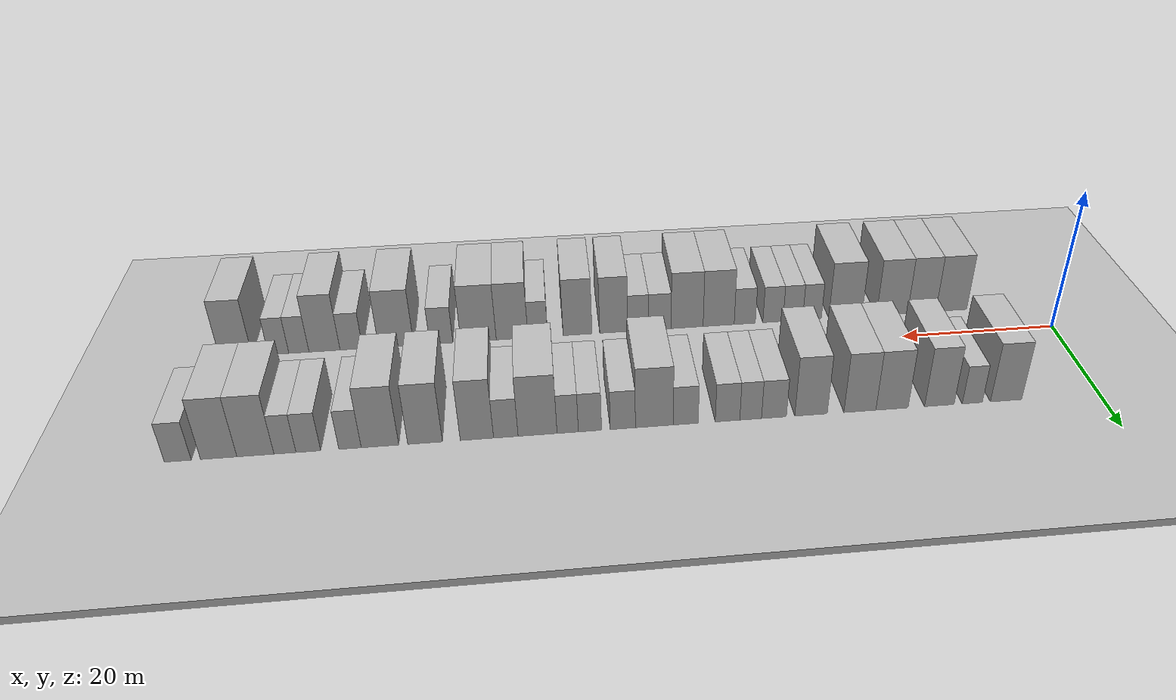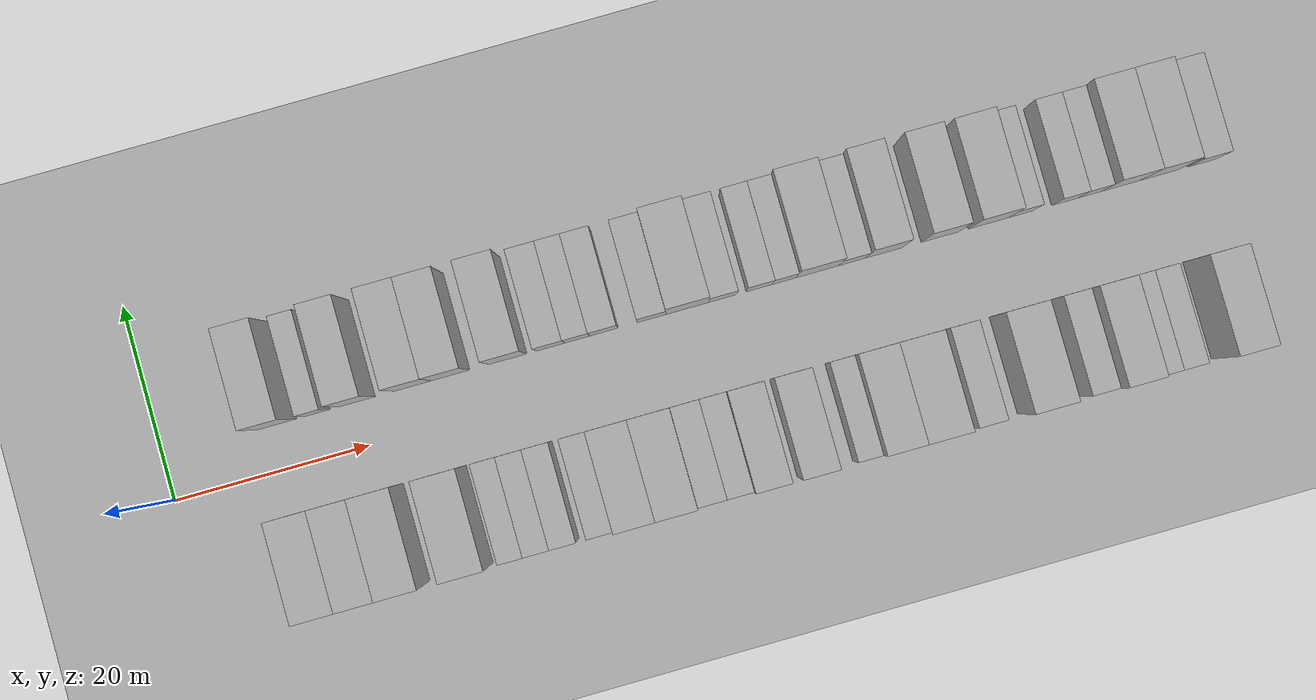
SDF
<sdf version="1.6">
 <world name="default">
  <include><name>ground_plane_1</name><uri>model://HANNAS_ground_plane</uri></include>
  <include>
   <name>ground_plane_2</name>
   <uri>model://HANNAS_ground_plane</uri>
   <pose>100 0 0  0 0 0</pose>
  </include>
  <model name="building_1">
   <static>1</static>
   <pose>11.9323 9.5000 0 0.000000 0.000000 1.570796</pose>
   <link name="link">
    <pose>0 0 4.50 0 0 0</pose>
    <collision name="collision"><geometry><box><size>10.0000 3.8645 9.0000</size></box></geometry></collision>
    <visual name="visual">
     <cast_shadows>0</cast_shadows>
     <geometry><box><size>10.0000 3.8645 9.0000</size></box></geometry>
     <material>
      <script>
       <uri>model://HANNAS_wall/materials/scripts</uri>
       <uri>model://HANNAS_wall/materials/textures</uri>
       <name>vrc/HANNAS_wall</name>
      </script>
     </material>
    </visual>
   </link>
  </model>
  <model name="building_2">
   <static>1</static>
   <pose>16.0944 9.5000 0 0.000000 0.000000 1.570796</pose>
   <link name="link">
    <pose>0 0 3.00 0 0 0</pose>
    <collision name="collision"><geometry><box><size>10.0000 2.4597 6.0000</size></box></geometry></collision>
    <visual name="visual">
     <cast_shadows>0</cast_shadows>
     <geometry><box><size>10.0000 2.4597 6.0000</size></box></geometry>
     <material>
      <script>
       <uri>model://HANNAS_wall/materials/scripts</uri>
       <uri>model://HANNAS_wall/materials/textures</uri>
       <name>vrc/HANNAS_wall</name>
      </script>
     </material>
    </visual>
   </link>
  </model>
  <model name="building_3">
   <static>1</static>
   <pose>20.1292 9.5000 0 0.000000 0.000000 1.570796</pose>
   <link name="link">
    <pose>0 0 4.50 0 0 0</pose>
    <collision name="collision"><geometry><box><size>10.0000 3.6099 9.0000</size></box></geometry></collision>
    <visual name="visual">
     <cast_shadows>0</cast_shadows>
     <geometry><box><size>10.0000 3.6099 9.0000</size></box></geometry>
     <material>
      <script>
       <uri>model://HANNAS_wall/materials/scripts</uri>
       <uri>model://HANNAS_wall/materials/textures</uri>
       <name>vrc/HANNAS_wall</name>
      </script>
     </material>
    </visual>
   </link>
  </model>
  <model name="building_4">
   <static>1</static>
   <pose>25.8857 9.5000 0 0.000000 0.000000 1.570796</pose>
   <link name="link">
    <pose>0 0 4.50 0 0 0</pose>
    <collision name="collision"><geometry><box><size>10.0000 3.9031 9.0000</size></box></geometry></collision>
    <visual name="visual">
     <cast_shadows>0</cast_shadows>
     <geometry><box><size>10.0000 3.9031 9.0000</size></box></geometry>
     <material>
      <script>
       <uri>model://HANNAS_wall/materials/scripts</uri>
       <uri>model://HANNAS_wall/materials/textures</uri>
       <name>vrc/HANNAS_wall</name>
      </script>
     </material>
    </visual>
   </link>
  </model>
  <model name="building_5">
   <static>1</static>
   <pose>29.7644 9.5000 0 0.000000 0.000000 1.570796</pose>
   <link name="link">
    <pose>0 0 4.50 0 0 0</pose>
    <collision name="collision"><geometry><box><size>10.0000 3.8545 9.0000</size></box></geometry></collision>
    <visual name="visual">
     <cast_shadows>0</cast_shadows>
     <geometry><box><size>10.0000 3.8545 9.0000</size></box></geometry>
     <material>
      <script>
       <uri>model://HANNAS_wall/materials/scripts</uri>
       <uri>model://HANNAS_wall/materials/textures</uri>
       <name>vrc/HANNAS_wall</name>
      </script>
     </material>
    </visual>
   </link>
  </model>
  <model name="building_6">
   <static>1</static>
   <pose>35.6287 9.5000 0 0.000000 0.000000 1.570796</pose>
   <link name="link">
    <pose>0 0 4.50 0 0 0</pose>
    <collision name="collision"><geometry><box><size>10.0000 3.8741 9.0000</size></box></geometry></collision>
    <visual name="visual">
     <cast_shadows>0</cast_shadows>
     <geometry><box><size>10.0000 3.8741 9.0000</size></box></geometry>
     <material>
      <script>
       <uri>model://HANNAS_wall/materials/scripts</uri>
       <uri>model://HANNAS_wall/materials/textures</uri>
       <name>vrc/HANNAS_wall</name>
      </script>
     </material>
    </visual>
   </link>
  </model>
  <model name="building_7">
   <static>1</static>
   <pose>40.0442 9.5000 0 0.000000 0.000000 1.570796</pose>
   <link name="link">
    <pose>0 0 3.00 0 0 0</pose>
    <collision name="collision"><geometry><box><size>10.0000 2.9568 6.0000</size></box></geometry></collision>
    <visual name="visual">
     <cast_shadows>0</cast_shadows>
     <geometry><box><size>10.0000 2.9568 6.0000</size></box></geometry>
     <material>
      <script>
       <uri>model://HANNAS_wall/materials/scripts</uri>
       <uri>model://HANNAS_wall/materials/textures</uri>
       <name>vrc/HANNAS_wall</name>
      </script>
     </material>
    </visual>
   </link>
  </model>
  <model name="building_8">
   <static>1</static>
   <pose>42.8083 9.5000 0 0.000000 0.000000 1.570796</pose>
   <link name="link">
    <pose>0 0 3.00 0 0 0</pose>
    <collision name="collision"><geometry><box><size>10.0000 2.5714 6.0000</size></box></geometry></collision>
    <visual name="visual">
     <cast_shadows>0</cast_shadows>
     <geometry><box><size>10.0000 2.5714 6.0000</size></box></geometry>
     <material>
      <script>
       <uri>model://HANNAS_wall/materials/scripts</uri>
       <uri>model://HANNAS_wall/materials/textures</uri>
       <name>vrc/HANNAS_wall</name>
      </script>
     </material>
    </visual>
   </link>
  </model>
  <model name="building_9">
   <static>1</static>
   <pose>45.5381 9.5000 0 0.000000 0.000000 1.570796</pose>
   <link name="link">
    <pose>0 0 3.00 0 0 0</pose>
    <collision name="collision"><geometry><box><size>10.0000 2.8882 6.0000</size></box></geometry></collision>
    <visual name="visual">
     <cast_shadows>0</cast_shadows>
     <geometry><box><size>10.0000 2.8882 6.0000</size></box></geometry>
     <material>
      <script>
       <uri>model://HANNAS_wall/materials/scripts</uri>
       <uri>model://HANNAS_wall/materials/textures</uri>
       <name>vrc/HANNAS_wall</name>
      </script>
     </material>
    </visual>
   </link>
  </model>
  <model name="building_10">
   <static>1</static>
   <pose>50.4463 9.5000 0 0.000000 0.000000 1.570796</pose>
   <link name="link">
    <pose>0 0 3.00 0 0 0</pose>
    <collision name="collision"><geometry><box><size>10.0000 2.9283 6.0000</size></box></geometry></collision>
    <visual name="visual">
     <cast_shadows>0</cast_shadows>
     <geometry><box><size>10.0000 2.9283 6.0000</size></box></geometry>
     <material>
      <script>
       <uri>model://HANNAS_wall/materials/scripts</uri>
       <uri>model://HANNAS_wall/materials/textures</uri>
       <name>vrc/HANNAS_wall</name>
      </script>
     </material>
    </visual>
   </link>
  </model>
  <model name="building_11">
   <static>1</static>
   <pose>54.1067 9.5000 0 0.000000 0.000000 1.570796</pose>
   <link name="link">
    <pose>0 0 4.50 0 0 0</pose>
    <collision name="collision"><geometry><box><size>10.0000 4.3924 9.0000</size></box></geometry></collision>
    <visual name="visual">
     <cast_shadows>0</cast_shadows>
     <geometry><box><size>10.0000 4.3924 9.0000</size></box></geometry>
     <material>
      <script>
       <uri>model://HANNAS_wall/materials/scripts</uri>
       <uri>model://HANNAS_wall/materials/textures</uri>
       <name>vrc/HANNAS_wall</name>
      </script>
     </material>
    </visual>
   </link>
  </model>
  <model name="building_12">
   <static>1</static>
   <pose>57.7570 9.5000 0 0.000000 0.000000 1.570796</pose>
   <link name="link">
    <pose>0 0 3.00 0 0 0</pose>
    <collision name="collision"><geometry><box><size>10.0000 2.9081 6.0000</size></box></geometry></collision>
    <visual name="visual">
     <cast_shadows>0</cast_shadows>
     <geometry><box><size>10.0000 2.9081 6.0000</size></box></geometry>
     <material>
      <script>
       <uri>model://HANNAS_wall/materials/scripts</uri>
       <uri>model://HANNAS_wall/materials/textures</uri>
       <name>vrc/HANNAS_wall</name>
      </script>
     </material>
    </visual>
   </link>
  </model>
  <model name="building_13">
   <static>1</static>
   <pose>61.5493 9.5000 0 0.000000 0.000000 1.570796</pose>
   <link name="link">
    <pose>0 0 3.00 0 0 0</pose>
    <collision name="collision"><geometry><box><size>10.0000 2.6766 6.0000</size></box></geometry></collision>
    <visual name="visual">
     <cast_shadows>0</cast_shadows>
     <geometry><box><size>10.0000 2.6766 6.0000</size></box></geometry>
     <material>
      <script>
       <uri>model://HANNAS_wall/materials/scripts</uri>
       <uri>model://HANNAS_wall/materials/textures</uri>
       <name>vrc/HANNAS_wall</name>
      </script>
     </material>
    </visual>
   </link>
  </model>
  <model name="building_14">
   <static>1</static>
   <pose>64.1087 9.5000 0 0.000000 0.000000 1.570796</pose>
   <link name="link">
    <pose>0 0 3.00 0 0 0</pose>
    <collision name="collision"><geometry><box><size>10.0000 2.4421 6.0000</size></box></geometry></collision>
    <visual name="visual">
     <cast_shadows>0</cast_shadows>
     <geometry><box><size>10.0000 2.4421 6.0000</size></box></geometry>
     <material>
      <script>
       <uri>model://HANNAS_wall/materials/scripts</uri>
       <uri>model://HANNAS_wall/materials/textures</uri>
       <name>vrc/HANNAS_wall</name>
      </script>
     </material>
    </visual>
   </link>
  </model>
  <model name="building_15">
   <static>1</static>
   <pose>67.5504 9.5000 0 0.000000 0.000000 1.570796</pose>
   <link name="link">
    <pose>0 0 4.50 0 0 0</pose>
    <collision name="collision"><geometry><box><size>10.0000 4.4414 9.0000</size></box></geometry></collision>
    <visual name="visual">
     <cast_shadows>0</cast_shadows>
     <geometry><box><size>10.0000 4.4414 9.0000</size></box></geometry>
     <material>
      <script>
       <uri>model://HANNAS_wall/materials/scripts</uri>
       <uri>model://HANNAS_wall/materials/textures</uri>
       <name>vrc/HANNAS_wall</name>
      </script>
     </material>
    </visual>
   </link>
  </model>
  <model name="building_16">
   <static>1</static>
   <pose>71.1654 9.5000 0 0.000000 0.000000 1.570796</pose>
   <link name="link">
    <pose>0 0 3.00 0 0 0</pose>
    <collision name="collision"><geometry><box><size>10.0000 2.7886 6.0000</size></box></geometry></collision>
    <visual name="visual">
     <cast_shadows>0</cast_shadows>
     <geometry><box><size>10.0000 2.7886 6.0000</size></box></geometry>
     <material>
      <script>
       <uri>model://HANNAS_wall/materials/scripts</uri>
       <uri>model://HANNAS_wall/materials/textures</uri>
       <name>vrc/HANNAS_wall</name>
      </script>
     </material>
    </visual>
   </link>
  </model>
  <model name="building_17">
   <static>1</static>
   <pose>74.4422 9.5000 0 0.000000 0.000000 1.570796</pose>
   <link name="link">
    <pose>0 0 4.50 0 0 0</pose>
    <collision name="collision"><geometry><box><size>10.0000 3.7651 9.0000</size></box></geometry></collision>
    <visual name="visual">
     <cast_shadows>0</cast_shadows>
     <geometry><box><size>10.0000 3.7651 9.0000</size></box></geometry>
     <material>
      <script>
       <uri>model://HANNAS_wall/materials/scripts</uri>
       <uri>model://HANNAS_wall/materials/textures</uri>
       <name>vrc/HANNAS_wall</name>
      </script>
     </material>
    </visual>
   </link>
  </model>
  <model name="building_18">
   <static>1</static>
   <pose>80.2710 9.5000 0 0.000000 0.000000 1.570796</pose>
   <link name="link">
    <pose>0 0 4.50 0 0 0</pose>
    <collision name="collision"><geometry><box><size>10.0000 3.8924 9.0000</size></box></geometry></collision>
    <visual name="visual">
     <cast_shadows>0</cast_shadows>
     <geometry><box><size>10.0000 3.8924 9.0000</size></box></geometry>
     <material>
      <script>
       <uri>model://HANNAS_wall/materials/scripts</uri>
       <uri>model://HANNAS_wall/materials/textures</uri>
       <name>vrc/HANNAS_wall</name>
      </script>
     </material>
    </visual>
   </link>
  </model>
  <model name="building_19">
   <static>1</static>
   <pose>85.3004 9.5000 0 0.000000 0.000000 1.570796</pose>
   <link name="link">
    <pose>0 0 4.50 0 0 0</pose>
    <collision name="collision"><geometry><box><size>10.0000 4.1664 9.0000</size></box></geometry></collision>
    <visual name="visual">
     <cast_shadows>0</cast_shadows>
     <geometry><box><size>10.0000 4.1664 9.0000</size></box></geometry>
     <material>
      <script>
       <uri>model://HANNAS_wall/materials/scripts</uri>
       <uri>model://HANNAS_wall/materials/textures</uri>
       <name>vrc/HANNAS_wall</name>
      </script>
     </material>
    </visual>
   </link>
  </model>
  <model name="building_20">
   <static>1</static>
   <pose>88.6267 9.5000 0 0.000000 0.000000 1.570796</pose>
   <link name="link">
    <pose>0 0 3.00 0 0 0</pose>
    <collision name="collision"><geometry><box><size>10.0000 2.4862 6.0000</size></box></geometry></collision>
    <visual name="visual">
     <cast_shadows>0</cast_shadows>
     <geometry><box><size>10.0000 2.4862 6.0000</size></box></geometry>
     <material>
      <script>
       <uri>model://HANNAS_wall/materials/scripts</uri>
       <uri>model://HANNAS_wall/materials/textures</uri>
       <name>vrc/HANNAS_wall</name>
      </script>
     </material>
    </visual>
   </link>
  </model>
  <model name="building_21">
   <static>1</static>
   <pose>93.2299 9.5000 0 0.000000 0.000000 1.570796</pose>
   <link name="link">
    <pose>0 0 3.00 0 0 0</pose>
    <collision name="collision"><geometry><box><size>10.0000 2.7202 6.0000</size></box></geometry></collision>
    <visual name="visual">
     <cast_shadows>0</cast_shadows>
     <geometry><box><size>10.0000 2.7202 6.0000</size></box></geometry>
     <material>
      <script>
       <uri>model://HANNAS_wall/materials/scripts</uri>
       <uri>model://HANNAS_wall/materials/textures</uri>
       <name>vrc/HANNAS_wall</name>
      </script>
     </material>
    </visual>
   </link>
  </model>
  <model name="building_22">
   <static>1</static>
   <pose>95.7969 9.5000 0 0.000000 0.000000 1.570796</pose>
   <link name="link">
    <pose>0 0 3.00 0 0 0</pose>
    <collision name="collision"><geometry><box><size>10.0000 2.4138 6.0000</size></box></geometry></collision>
    <visual name="visual">
     <cast_shadows>0</cast_shadows>
     <geometry><box><size>10.0000 2.4138 6.0000</size></box></geometry>
     <material>
      <script>
       <uri>model://HANNAS_wall/materials/scripts</uri>
       <uri>model://HANNAS_wall/materials/textures</uri>
       <name>vrc/HANNAS_wall</name>
      </script>
     </material>
    </visual>
   </link>
  </model>
  <model name="building_23">
   <static>1</static>
   <pose>99.0238 9.5000 0 0.000000 0.000000 1.570796</pose>
   <link name="link">
    <pose>0 0 4.50 0 0 0</pose>
    <collision name="collision"><geometry><box><size>10.0000 4.0401 9.0000</size></box></geometry></collision>
    <visual name="visual">
     <cast_shadows>0</cast_shadows>
     <geometry><box><size>10.0000 4.0401 9.0000</size></box></geometry>
     <material>
      <script>
       <uri>model://HANNAS_wall/materials/scripts</uri>
       <uri>model://HANNAS_wall/materials/textures</uri>
       <name>vrc/HANNAS_wall</name>
      </script>
     </material>
    </visual>
   </link>
  </model>
  <model name="building_24">
   <static>1</static>
   <pose>103.0161 9.5000 0 0.000000 0.000000 1.570796</pose>
   <link name="link">
    <pose>0 0 4.50 0 0 0</pose>
    <collision name="collision"><geometry><box><size>10.0000 3.9446 9.0000</size></box></geometry></collision>
    <visual name="visual">
     <cast_shadows>0</cast_shadows>
     <geometry><box><size>10.0000 3.9446 9.0000</size></box></geometry>
     <material>
      <script>
       <uri>model://HANNAS_wall/materials/scripts</uri>
       <uri>model://HANNAS_wall/materials/textures</uri>
       <name>vrc/HANNAS_wall</name>
      </script>
     </material>
    </visual>
   </link>
  </model>
  <model name="building_25">
   <static>1</static>
   <pose>107.4383 9.5000 0 0.000000 0.000000 1.570796</pose>
   <link name="link">
    <pose>0 0 3.00 0 0 0</pose>
    <collision name="collision"><geometry><box><size>10.0000 2.8997 6.0000</size></box></geometry></collision>
    <visual name="visual">
     <cast_shadows>0</cast_shadows>
     <geometry><box><size>10.0000 2.8997 6.0000</size></box></geometry>
     <material>
      <script>
       <uri>model://HANNAS_wall/materials/scripts</uri>
       <uri>model://HANNAS_wall/materials/textures</uri>
       <name>vrc/HANNAS_wall</name>
      </script>
     </material>
    </visual>
   </link>
  </model>
  <model name="building_49">
   <static>1</static>
   <pose>12.1169 -9.5000 0 0.000000 0.000000 1.570796</pose>
   <link name="link">
    <pose>0 0 4.50 0 0 0</pose>
    <collision name="collision"><geometry><box><size>10.0000 4.2338 9.0000</size></box></geometry></collision>
    <visual name="visual">
     <cast_shadows>0</cast_shadows>
     <geometry><box><size>10.0000 4.2338 9.0000</size></box></geometry>
     <material>
      <script>
       <uri>model://HANNAS_wall/materials/scripts</uri>
       <uri>model://HANNAS_wall/materials/textures</uri>
       <name>vrc/HANNAS_wall</name>
      </script>
     </material>
    </visual>
   </link>
  </model>
  <model name="building_50">
   <static>1</static>
   <pose>16.1686 -9.5000 0 0.000000 0.000000 1.570796</pose>
   <link name="link">
    <pose>0 0 4.50 0 0 0</pose>
    <collision name="collision"><geometry><box><size>10.0000 3.8697 9.0000</size></box></geometry></collision>
    <visual name="visual">
     <cast_shadows>0</cast_shadows>
     <geometry><box><size>10.0000 3.8697 9.0000</size></box></geometry>
     <material>
      <script>
       <uri>model://HANNAS_wall/materials/scripts</uri>
       <uri>model://HANNAS_wall/materials/textures</uri>
       <name>vrc/HANNAS_wall</name>
      </script>
     </material>
    </visual>
   </link>
  </model>
  <model name="building_51">
   <static>1</static>
   <pose>20.2210 -9.5000 0 0.000000 0.000000 1.570796</pose>
   <link name="link">
    <pose>0 0 4.50 0 0 0</pose>
    <collision name="collision"><geometry><box><size>10.0000 4.2349 9.0000</size></box></geometry></collision>
    <visual name="visual">
     <cast_shadows>0</cast_shadows>
     <geometry><box><size>10.0000 4.2349 9.0000</size></box></geometry>
     <material>
      <script>
       <uri>model://HANNAS_wall/materials/scripts</uri>
       <uri>model://HANNAS_wall/materials/textures</uri>
       <name>vrc/HANNAS_wall</name>
      </script>
     </material>
    </visual>
   </link>
  </model>
  <model name="building_52">
   <static>1</static>
   <pose>26.5717 -9.5000 0 0.000000 0.000000 1.570796</pose>
   <link name="link">
    <pose>0 0 4.50 0 0 0</pose>
    <collision name="collision"><geometry><box><size>10.0000 4.4666 9.0000</size></box></geometry></collision>
    <visual name="visual">
     <cast_shadows>0</cast_shadows>
     <geometry><box><size>10.0000 4.4666 9.0000</size></box></geometry>
     <material>
      <script>
       <uri>model://HANNAS_wall/materials/scripts</uri>
       <uri>model://HANNAS_wall/materials/textures</uri>
       <name>vrc/HANNAS_wall</name>
      </script>
     </material>
    </visual>
   </link>
  </model>
  <model name="building_53">
   <static>1</static>
   <pose>31.0629 -9.5000 0 0.000000 0.000000 1.570796</pose>
   <link name="link">
    <pose>0 0 3.00 0 0 0</pose>
    <collision name="collision"><geometry><box><size>10.0000 2.5158 6.0000</size></box></geometry></collision>
    <visual name="visual">
     <cast_shadows>0</cast_shadows>
     <geometry><box><size>10.0000 2.5158 6.0000</size></box></geometry>
     <material>
      <script>
       <uri>model://HANNAS_wall/materials/scripts</uri>
       <uri>model://HANNAS_wall/materials/textures</uri>
       <name>vrc/HANNAS_wall</name>
      </script>
     </material>
    </visual>
   </link>
  </model>
  <model name="building_54">
   <static>1</static>
   <pose>33.6341 -9.5000 0 0.000000 0.000000 1.570796</pose>
   <link name="link">
    <pose>0 0 3.00 0 0 0</pose>
    <collision name="collision"><geometry><box><size>10.0000 2.6265 6.0000</size></box></geometry></collision>
    <visual name="visual">
     <cast_shadows>0</cast_shadows>
     <geometry><box><size>10.0000 2.6265 6.0000</size></box></geometry>
     <material>
      <script>
       <uri>model://HANNAS_wall/materials/scripts</uri>
       <uri>model://HANNAS_wall/materials/textures</uri>
       <name>vrc/HANNAS_wall</name>
      </script>
     </material>
    </visual>
   </link>
  </model>
  <model name="building_55">
   <static>1</static>
   <pose>36.2865 -9.5000 0 0.000000 0.000000 1.570796</pose>
   <link name="link">
    <pose>0 0 3.00 0 0 0</pose>
    <collision name="collision"><geometry><box><size>10.0000 2.6783 6.0000</size></box></geometry></collision>
    <visual name="visual">
     <cast_shadows>0</cast_shadows>
     <geometry><box><size>10.0000 2.6783 6.0000</size></box></geometry>
     <material>
      <script>
       <uri>model://HANNAS_wall/materials/scripts</uri>
       <uri>model://HANNAS_wall/materials/textures</uri>
       <name>vrc/HANNAS_wall</name>
      </script>
     </material>
    </visual>
   </link>
  </model>
  <model name="building_56">
   <static>1</static>
   <pose>40.0301 -9.5000 0 0.000000 0.000000 1.570796</pose>
   <link name="link">
    <pose>0 0 3.00 0 0 0</pose>
    <collision name="collision"><geometry><box><size>10.0000 2.8089 6.0000</size></box></geometry></collision>
    <visual name="visual">
     <cast_shadows>0</cast_shadows>
     <geometry><box><size>10.0000 2.8089 6.0000</size></box></geometry>
     <material>
      <script>
       <uri>model://HANNAS_wall/materials/scripts</uri>
       <uri>model://HANNAS_wall/materials/textures</uri>
       <name>vrc/HANNAS_wall</name>
      </script>
     </material>
    </visual>
   </link>
  </model>
  <model name="building_57">
   <static>1</static>
   <pose>43.4892 -9.5000 0 0.000000 0.000000 1.570796</pose>
   <link name="link">
    <pose>0 0 4.50 0 0 0</pose>
    <collision name="collision"><geometry><box><size>10.0000 4.1092 9.0000</size></box></geometry></collision>
    <visual name="visual">
     <cast_shadows>0</cast_shadows>
     <geometry><box><size>10.0000 4.1092 9.0000</size></box></geometry>
     <material>
      <script>
       <uri>model://HANNAS_wall/materials/scripts</uri>
       <uri>model://HANNAS_wall/materials/textures</uri>
       <name>vrc/HANNAS_wall</name>
      </script>
     </material>
    </visual>
   </link>
  </model>
  <model name="building_58">
   <static>1</static>
   <pose>47.6472 -9.5000 0 0.000000 0.000000 1.570796</pose>
   <link name="link">
    <pose>0 0 4.50 0 0 0</pose>
    <collision name="collision"><geometry><box><size>10.0000 4.2069 9.0000</size></box></geometry></collision>
    <visual name="visual">
     <cast_shadows>0</cast_shadows>
     <geometry><box><size>10.0000 4.2069 9.0000</size></box></geometry>
     <material>
      <script>
       <uri>model://HANNAS_wall/materials/scripts</uri>
       <uri>model://HANNAS_wall/materials/textures</uri>
       <name>vrc/HANNAS_wall</name>
      </script>
     </material>
    </visual>
   </link>
  </model>
  <model name="building_59">
   <static>1</static>
   <pose>51.2193 -9.5000 0 0.000000 0.000000 1.570796</pose>
   <link name="link">
    <pose>0 0 3.00 0 0 0</pose>
    <collision name="collision"><geometry><box><size>10.0000 2.9372 6.0000</size></box></geometry></collision>
    <visual name="visual">
     <cast_shadows>0</cast_shadows>
     <geometry><box><size>10.0000 2.9372 6.0000</size></box></geometry>
     <material>
      <script>
       <uri>model://HANNAS_wall/materials/scripts</uri>
       <uri>model://HANNAS_wall/materials/textures</uri>
       <name>vrc/HANNAS_wall</name>
      </script>
     </material>
    </visual>
   </link>
  </model>
  <model name="building_60">
   <static>1</static>
   <pose>54.0514 -9.5000 0 0.000000 0.000000 1.570796</pose>
   <link name="link">
    <pose>0 0 3.00 0 0 0</pose>
    <collision name="collision"><geometry><box><size>10.0000 2.7272 6.0000</size></box></geometry></collision>
    <visual name="visual">
     <cast_shadows>0</cast_shadows>
     <geometry><box><size>10.0000 2.7272 6.0000</size></box></geometry>
     <material>
      <script>
       <uri>model://HANNAS_wall/materials/scripts</uri>
       <uri>model://HANNAS_wall/materials/textures</uri>
       <name>vrc/HANNAS_wall</name>
      </script>
     </material>
    </visual>
   </link>
  </model>
  <model name="building_61">
   <static>1</static>
   <pose>57.2304 -9.5000 0 0.000000 0.000000 1.570796</pose>
   <link name="link">
    <pose>0 0 4.50 0 0 0</pose>
    <collision name="collision"><geometry><box><size>10.0000 3.6307 9.0000</size></box></geometry></collision>
    <visual name="visual">
     <cast_shadows>0</cast_shadows>
     <geometry><box><size>10.0000 3.6307 9.0000</size></box></geometry>
     <material>
      <script>
       <uri>model://HANNAS_wall/materials/scripts</uri>
       <uri>model://HANNAS_wall/materials/textures</uri>
       <name>vrc/HANNAS_wall</name>
      </script>
     </material>
    </visual>
   </link>
  </model>
  <model name="building_62">
   <static>1</static>
   <pose>61.9089 -9.5000 0 0.000000 0.000000 1.570796</pose>
   <link name="link">
    <pose>0 0 4.50 0 0 0</pose>
    <collision name="collision"><geometry><box><size>10.0000 3.7264 9.0000</size></box></geometry></collision>
    <visual name="visual">
     <cast_shadows>0</cast_shadows>
     <geometry><box><size>10.0000 3.7264 9.0000</size></box></geometry>
     <material>
      <script>
       <uri>model://HANNAS_wall/materials/scripts</uri>
       <uri>model://HANNAS_wall/materials/textures</uri>
       <name>vrc/HANNAS_wall</name>
      </script>
     </material>
    </visual>
   </link>
  </model>
  <model name="building_63">
   <static>1</static>
   <pose>67.0317 -9.5000 0 0.000000 0.000000 1.570796</pose>
   <link name="link">
    <pose>0 0 3.00 0 0 0</pose>
    <collision name="collision"><geometry><box><size>10.0000 2.5192 6.0000</size></box></geometry></collision>
    <visual name="visual">
     <cast_shadows>0</cast_shadows>
     <geometry><box><size>10.0000 2.5192 6.0000</size></box></geometry>
     <material>
      <script>
       <uri>model://HANNAS_wall/materials/scripts</uri>
       <uri>model://HANNAS_wall/materials/textures</uri>
       <name>vrc/HANNAS_wall</name>
      </script>
     </material>
    </visual>
   </link>
  </model>
  <model name="building_64">
   <static>1</static>
   <pose>70.3164 -9.5000 0 0.000000 0.000000 1.570796</pose>
   <link name="link">
    <pose>0 0 4.50 0 0 0</pose>
    <collision name="collision"><geometry><box><size>10.0000 4.0502 9.0000</size></box></geometry></collision>
    <visual name="visual">
     <cast_shadows>0</cast_shadows>
     <geometry><box><size>10.0000 4.0502 9.0000</size></box></geometry>
     <material>
      <script>
       <uri>model://HANNAS_wall/materials/scripts</uri>
       <uri>model://HANNAS_wall/materials/textures</uri>
       <name>vrc/HANNAS_wall</name>
      </script>
     </material>
    </visual>
   </link>
  </model>
  <model name="building_65">
   <static>1</static>
   <pose>74.5894 -9.5000 0 0.000000 0.000000 1.570796</pose>
   <link name="link">
    <pose>0 0 4.50 0 0 0</pose>
    <collision name="collision"><geometry><box><size>10.0000 4.4960 9.0000</size></box></geometry></collision>
    <visual name="visual">
     <cast_shadows>0</cast_shadows>
     <geometry><box><size>10.0000 4.4960 9.0000</size></box></geometry>
     <material>
      <script>
       <uri>model://HANNAS_wall/materials/scripts</uri>
       <uri>model://HANNAS_wall/materials/textures</uri>
       <name>vrc/HANNAS_wall</name>
      </script>
     </material>
    </visual>
   </link>
  </model>
  <model name="building_66">
   <static>1</static>
   <pose>79.3045 -9.5000 0 0.000000 0.000000 1.570796</pose>
   <link name="link">
    <pose>0 0 3.00 0 0 0</pose>
    <collision name="collision"><geometry><box><size>10.0000 2.9342 6.0000</size></box></geometry></collision>
    <visual name="visual">
     <cast_shadows>0</cast_shadows>
     <geometry><box><size>10.0000 2.9342 6.0000</size></box></geometry>
     <material>
      <script>
       <uri>model://HANNAS_wall/materials/scripts</uri>
       <uri>model://HANNAS_wall/materials/textures</uri>
       <name>vrc/HANNAS_wall</name>
      </script>
     </material>
    </visual>
   </link>
  </model>
  <model name="building_67">
   <static>1</static>
   <pose>84.9762 -9.5000 0 0.000000 0.000000 1.570796</pose>
   <link name="link">
    <pose>0 0 4.50 0 0 0</pose>
    <collision name="collision"><geometry><box><size>10.0000 4.4092 9.0000</size></box></geometry></collision>
    <visual name="visual">
     <cast_shadows>0</cast_shadows>
     <geometry><box><size>10.0000 4.4092 9.0000</size></box></geometry>
     <material>
      <script>
       <uri>model://HANNAS_wall/materials/scripts</uri>
       <uri>model://HANNAS_wall/materials/textures</uri>
       <name>vrc/HANNAS_wall</name>
      </script>
     </material>
    </visual>
   </link>
  </model>
  <model name="building_68">
   <static>1</static>
   <pose>90.5872 -9.5000 0 0.000000 0.000000 1.570796</pose>
   <link name="link">
    <pose>0 0 3.00 0 0 0</pose>
    <collision name="collision"><geometry><box><size>10.0000 2.8128 6.0000</size></box></geometry></collision>
    <visual name="visual">
     <cast_shadows>0</cast_shadows>
     <geometry><box><size>10.0000 2.8128 6.0000</size></box></geometry>
     <material>
      <script>
       <uri>model://HANNAS_wall/materials/scripts</uri>
       <uri>model://HANNAS_wall/materials/textures</uri>
       <name>vrc/HANNAS_wall</name>
      </script>
     </material>
    </visual>
   </link>
  </model>
  <model name="building_69">
   <static>1</static>
   <pose>93.9170 -9.5000 0 0.000000 0.000000 1.570796</pose>
   <link name="link">
    <pose>0 0 4.50 0 0 0</pose>
    <collision name="collision"><geometry><box><size>10.0000 3.8468 9.0000</size></box></geometry></collision>
    <visual name="visual">
     <cast_shadows>0</cast_shadows>
     <geometry><box><size>10.0000 3.8468 9.0000</size></box></geometry>
     <material>
      <script>
       <uri>model://HANNAS_wall/materials/scripts</uri>
       <uri>model://HANNAS_wall/materials/textures</uri>
       <name>vrc/HANNAS_wall</name>
      </script>
     </material>
    </visual>
   </link>
  </model>
  <model name="building_70">
   <static>1</static>
   <pose>97.0831 -9.5000 0 0.000000 0.000000 1.570796</pose>
   <link name="link">
    <pose>0 0 3.00 0 0 0</pose>
    <collision name="collision"><geometry><box><size>10.0000 2.4854 6.0000</size></box></geometry></collision>
    <visual name="visual">
     <cast_shadows>0</cast_shadows>
     <geometry><box><size>10.0000 2.4854 6.0000</size></box></geometry>
     <material>
      <script>
       <uri>model://HANNAS_wall/materials/scripts</uri>
       <uri>model://HANNAS_wall/materials/textures</uri>
       <name>vrc/HANNAS_wall</name>
      </script>
     </material>
    </visual>
   </link>
  </model>
  <model name="building_71">
   <static>1</static>
   <pose>99.5820 -9.5000 0 0.000000 0.000000 1.570796</pose>
   <link name="link">
    <pose>0 0 3.00 0 0 0</pose>
    <collision name="collision"><geometry><box><size>10.0000 2.5124 6.0000</size></box></geometry></collision>
    <visual name="visual">
     <cast_shadows>0</cast_shadows>
     <geometry><box><size>10.0000 2.5124 6.0000</size></box></geometry>
     <material>
      <script>
       <uri>model://HANNAS_wall/materials/scripts</uri>
       <uri>model://HANNAS_wall/materials/textures</uri>
       <name>vrc/HANNAS_wall</name>
      </script>
     </material>
    </visual>
   </link>
  </model>
  <model name="building_72">
   <static>1</static>
   <pose>104.8292 -9.5000 0 0.000000 0.000000 1.570796</pose>
   <link name="link">
    <pose>0 0 4.50 0 0 0</pose>
    <collision name="collision"><geometry><box><size>10.0000 3.9821 9.0000</size></box></geometry></collision>
    <visual name="visual">
     <cast_shadows>0</cast_shadows>
     <geometry><box><size>10.0000 3.9821 9.0000</size></box></geometry>
     <material>
      <script>
       <uri>model://HANNAS_wall/materials/scripts</uri>
       <uri>model://HANNAS_wall/materials/textures</uri>
       <name>vrc/HANNAS_wall</name>
      </script>
     </material>
    </visual>
   </link>
  </model>
 </world>
</sdf>
